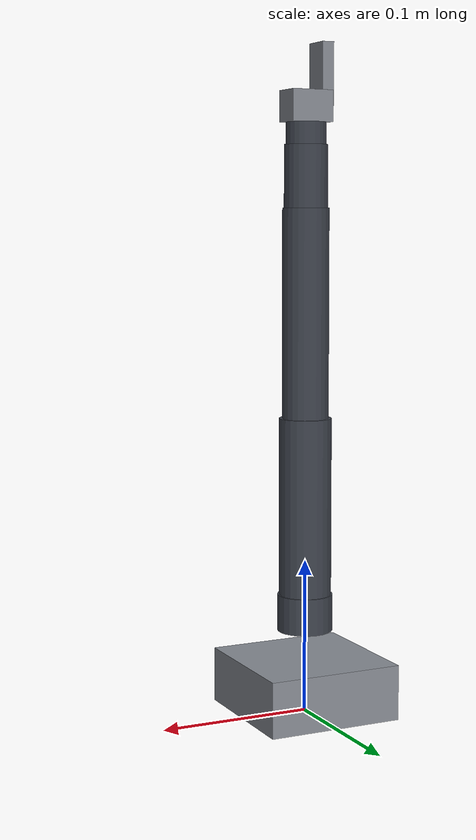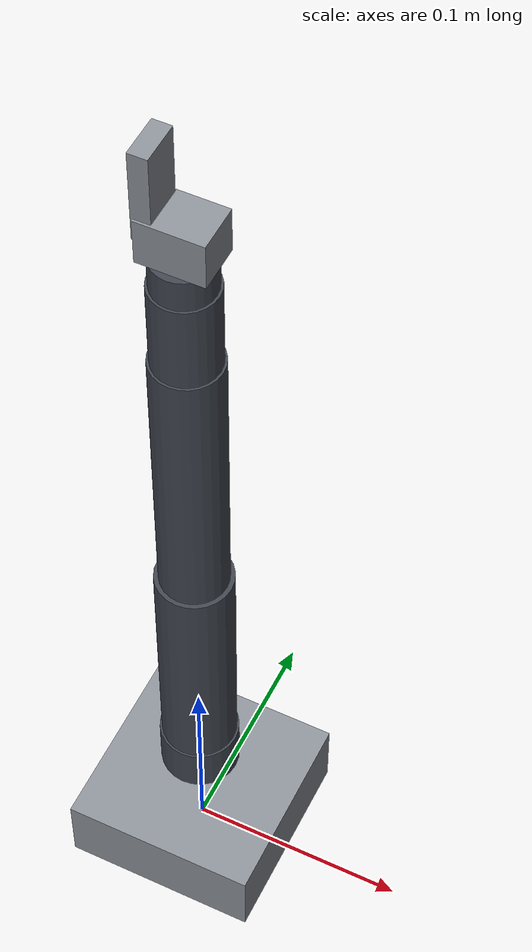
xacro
<?xml version="1.0"?>
<robot xmlns:xacro="http://www.ros.org/wiki/xacro" name="so101">

  <xacro:arg name="use_mock_hardware" default="true"/>
  <xacro:arg name="serial_port" default="/dev/ttyACM0"/>

  <!-- Link lengths, metres. Mirrors so101_arm.xml. -->
  <xacro:property name="shoulder_height" value="0.0542"/>
  <xacro:property name="shoulder_offset" value="0.0240"/>
  <xacro:property name="upper_arm_length" value="0.1159"/>
  <xacro:property name="forearm_length" value="0.1350"/>
  <xacro:property name="wrist_length" value="0.0400"/>
  <xacro:property name="wrist_roll_length" value="0.0140"/>
  <xacro:property name="tool_offset" value="0.0240"/>
  <xacro:property name="tool_centre_offset" value="0.0260"/>

  <!-- STS3215 at 12 V: 30 kgf.cm. -->
  <xacro:property name="servo_effort" value="2.94"/>
  <xacro:property name="servo_velocity" value="3.0"/>

  <xacro:macro name="segment" params="name length radius mass">
    <link name="${name}">
      <visual>
        <origin xyz="0 0 ${length / 2}" rpy="0 0 0"/>
        <geometry><cylinder radius="${radius}" length="${length}"/></geometry>
        <material name="graphite"><color rgba="0.25 0.27 0.31 1"/></material>
      </visual>
      <collision>
        <origin xyz="0 0 ${length / 2}" rpy="0 0 0"/>
        <geometry><cylinder radius="${radius}" length="${length}"/></geometry>
      </collision>
      <inertial>
        <origin xyz="0 0 ${length / 2}" rpy="0 0 0"/>
        <mass value="${mass}"/>
        <inertia
          ixx="${mass * (3 * radius * radius + length * length) / 12}" ixy="0" ixz="0"
          iyy="${mass * (3 * radius * radius + length * length) / 12}" iyz="0"
          izz="${mass * radius * radius / 2}"/>
      </inertial>
    </link>
  </xacro:macro>

  <link name="world"/>
  <joint name="world_to_base" type="fixed">
    <parent link="world"/>
    <child link="base_link"/>
    <origin xyz="0 0 0" rpy="0 0 0"/>
  </joint>

  <link name="base_link">
    <visual>
      <origin xyz="0 0 0.018"/>
      <geometry><box size="0.09 0.09 0.036"/></geometry>
      <material name="steel"><color rgba="0.55 0.57 0.60 1"/></material>
    </visual>
    <collision>
      <origin xyz="0 0 0.018"/>
      <geometry><box size="0.09 0.09 0.036"/></geometry>
    </collision>
    <inertial>
      <origin xyz="0 0 0.018"/>
      <mass value="0.45"/>
      <inertia ixx="0.0006" ixy="0" ixz="0" iyy="0.0006" iyz="0" izz="0.0006"/>
    </inertial>
  </link>

  <xacro:segment name="shoulder_link" length="${shoulder_offset}" radius="0.018" mass="0.09"/>
  <joint name="shoulder_pan" type="revolute">
    <parent link="base_link"/>
    <child link="shoulder_link"/>
    <origin xyz="0 0 ${shoulder_height}" rpy="0 0 0"/>
    <axis xyz="0 0 1"/>
    <limit lower="-1.92" upper="1.92" effort="${servo_effort}" velocity="${servo_velocity}"/>
  </joint>

  <xacro:segment name="upper_arm_link" length="${upper_arm_length}" radius="0.017" mass="0.18"/>
  <joint name="shoulder_lift" type="revolute">
    <parent link="shoulder_link"/>
    <child link="upper_arm_link"/>
    <origin xyz="0 0 ${shoulder_offset}" rpy="0 0 0"/>
    <axis xyz="0 1 0"/>
    <limit lower="-1.75" upper="1.75" effort="${servo_effort}" velocity="${servo_velocity}"/>
  </joint>

  <xacro:segment name="forearm_link" length="${forearm_length}" radius="0.015" mass="0.16"/>
  <joint name="elbow_flex" type="revolute">
    <parent link="upper_arm_link"/>
    <child link="forearm_link"/>
    <origin xyz="0 0 ${upper_arm_length}" rpy="0 0 0"/>
    <axis xyz="0 1 0"/>
    <limit lower="-1.69" upper="1.69" effort="${servo_effort}" velocity="${servo_velocity}"/>
  </joint>

  <xacro:segment name="wrist_link" length="${wrist_length}" radius="0.014" mass="0.08"/>
  <joint name="wrist_flex" type="revolute">
    <parent link="forearm_link"/>
    <child link="wrist_link"/>
    <origin xyz="0 0 ${forearm_length}" rpy="0 0 0"/>
    <axis xyz="0 1 0"/>
    <!-- +/- 110 deg. See the wrist_flex comment in so101_arm.xml: at +/- 100 the
         arm cannot hold the tool vertical over the fixtures at all. -->
    <limit lower="-1.92" upper="1.92" effort="${servo_effort}" velocity="${servo_velocity}"/>
  </joint>

  <xacro:segment name="wrist_roll_link" length="${wrist_roll_length}" radius="0.013" mass="0.04"/>
  <joint name="wrist_roll" type="revolute">
    <parent link="wrist_link"/>
    <child link="wrist_roll_link"/>
    <origin xyz="0 0 ${wrist_length}" rpy="0 0 0"/>
    <axis xyz="0 0 1"/>
    <limit lower="-2.79" upper="2.79" effort="${servo_effort}" velocity="${servo_velocity}"/>
  </joint>

  <link name="tool_link">
    <visual>
      <geometry><box size="0.028 0.020 0.020"/></geometry>
      <material name="steel"/>
    </visual>
    <collision><geometry><box size="0.028 0.020 0.020"/></geometry></collision>
    <inertial>
      <mass value="0.05"/>
      <inertia ixx="4e-5" ixy="0" ixz="0" iyy="4e-5" iyz="0" izz="4e-5"/>
    </inertial>
  </link>
  <joint name="tool_mount" type="fixed">
    <parent link="wrist_roll_link"/>
    <child link="tool_link"/>
    <origin xyz="0 0 ${tool_offset}" rpy="0 0 0"/>
  </joint>

  <!-- The point the admittance controller regulates, and the point the force
       estimate is expressed at. MoveIt's tip link. -->
  <link name="tool_centre"/>
  <joint name="tool_centre_joint" type="fixed">
    <parent link="tool_link"/>
    <child link="tool_centre"/>
    <origin xyz="0 0 ${tool_centre_offset}" rpy="0 0 0"/>
  </joint>

  <link name="gripper_jaw">
    <visual>
      <origin xyz="0 0 0.020"/>
      <geometry><box size="0.008 0.018 0.040"/></geometry>
      <material name="steel"/>
    </visual>
    <inertial>
      <origin xyz="0 0 0.020"/>
      <mass value="0.01"/>
      <inertia ixx="2e-6" ixy="0" ixz="0" iyy="2e-6" iyz="0" izz="2e-6"/>
    </inertial>
  </link>
  <joint name="gripper" type="prismatic">
    <parent link="tool_link"/>
    <child link="gripper_jaw"/>
    <origin xyz="-0.011 0 0" rpy="0 0 0"/>
    <axis xyz="1 0 0"/>
    <limit lower="-0.004" upper="0.020" effort="25.0" velocity="0.15"/>
  </joint>

  <ros2_control name="so101_hardware" type="system">
    <hardware>
      <xacro:if value="$(arg use_mock_hardware)">
        <plugin>mock_components/GenericSystem</plugin>
        <param name="calculate_dynamics">true</param>
      </xacro:if>
      <xacro:unless value="$(arg use_mock_hardware)">
        <plugin>griff_hardware/NotImplemented</plugin>
        <param name="serial_port">$(arg serial_port)</param>
      </xacro:unless>
    </hardware>

    <xacro:macro name="servo_joint" params="name min max">
      <joint name="${name}">
        <command_interface name="position">
          <param name="min">${min}</param>
          <param name="max">${max}</param>
        </command_interface>
        <state_interface name="position"/>
        <state_interface name="velocity"/>
        <!-- STS3215 present-load. This is the only force-related quantity the
             hardware exposes, and it is what the force estimate is built on. -->
        <state_interface name="effort"/>
      </joint>
    </xacro:macro>

    <xacro:servo_joint name="shoulder_pan" min="-1.92" max="1.92"/>
    <xacro:servo_joint name="shoulder_lift" min="-1.75" max="1.75"/>
    <xacro:servo_joint name="elbow_flex" min="-1.69" max="1.69"/>
    <xacro:servo_joint name="wrist_flex" min="-1.92" max="1.92"/>
    <xacro:servo_joint name="wrist_roll" min="-2.79" max="2.79"/>
    <xacro:servo_joint name="gripper" min="-0.004" max="0.020"/>
  </ros2_control>
</robot>
